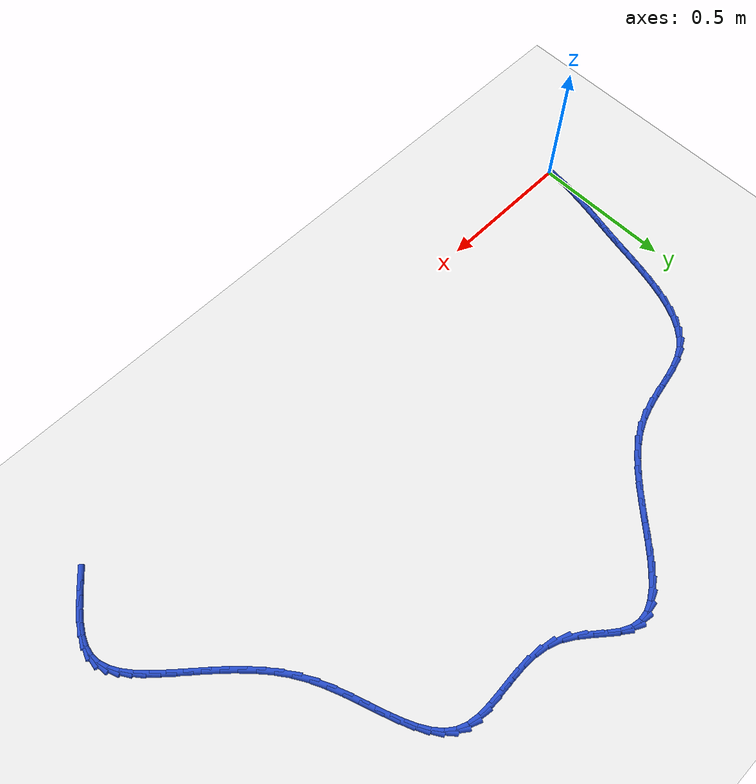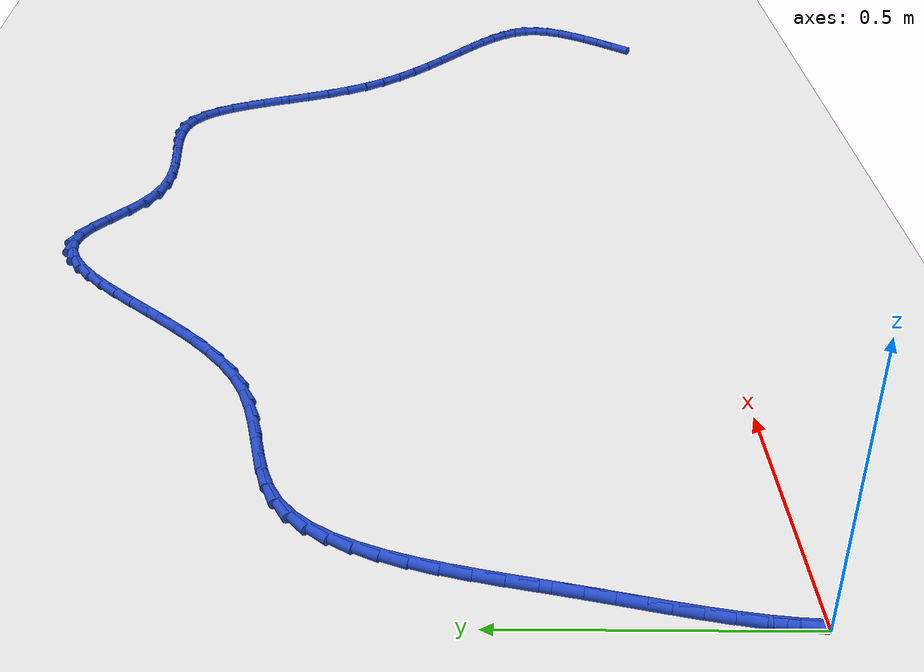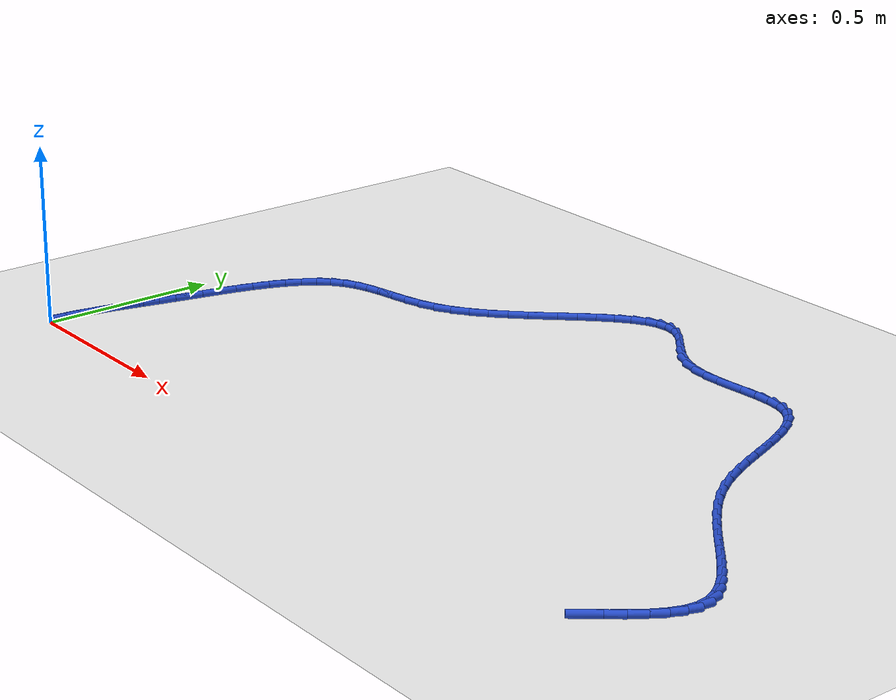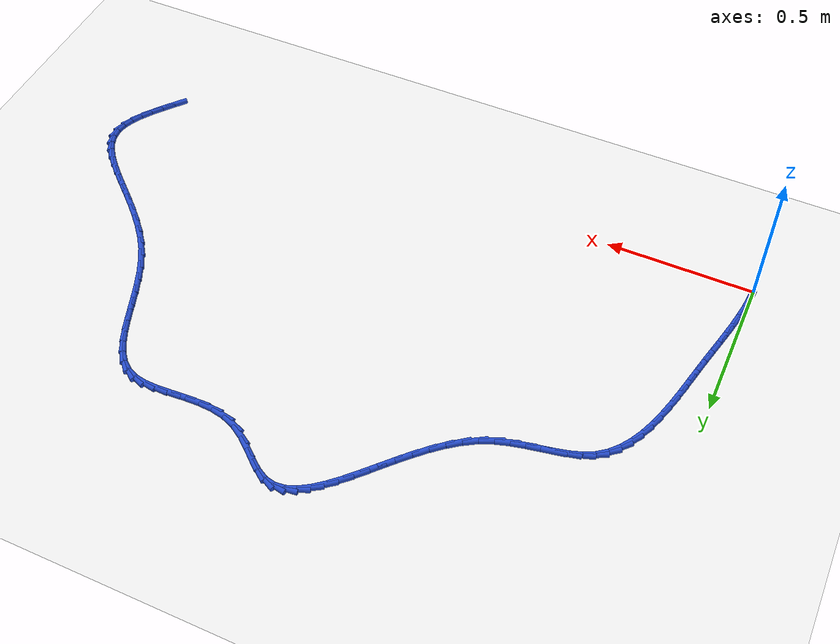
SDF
<sdf version="1.6">
 <world name="default">
  <model name="ground_plane">
   <static>1</static>
   <link name="link">
    <collision name="collision">
     <geometry><plane><normal>0 0 1</normal><size>100 100</size></plane></geometry>
     <surface><friction><ode><mu>100</mu><mu2>50</mu2></ode></friction></surface>
    </collision>
    <visual name="visual">
     <cast_shadows>0</cast_shadows>
     <geometry><plane><normal>0 0 1</normal><size>100 100</size></plane></geometry>
     <material>
      <script><uri>file://media/materials/scripts/gazebo.material</uri><name>Gazebo/WhiteGlow</name></script>
     </material>
    </visual>
   </link>
  </model>
  <model name="line">
   <link name="link_1">
    <pose>0.0030210771628977427 0.043549844444289006 0.01 0 1.57 1.4515427963999257</pose>
    <collision name="collision">
     <geometry><cylinder><radius>0.01</radius><length>0.08</length></cylinder></geometry>
    </collision>
    <visual name="visual">
     <material>
      <script><name>Gazebo/Blue</name><uri>file://media/materials/scripts/gazebo.material</uri></script>
     </material>
     <geometry><cylinder><radius>0.01</radius><length>0.08</length></cylinder></geometry>
    </visual>
   </link>
   <link name="link_2">
    <pose>0.008180374880186836 0.0866078318617924 0.01 0 1.57 1.409806183316817</pose>
    <collision name="collision">
     <geometry><cylinder><radius>0.01</radius><length>0.08</length></cylinder></geometry>
    </collision>
    <visual name="visual">
     <material>
      <script><name>Gazebo/Blue</name><uri>file://media/materials/scripts/gazebo.material</uri></script>
     </material>
     <geometry><cylinder><radius>0.01</radius><length>0.08</length></cylinder></geometry>
    </visual>
   </link>
   <link name="link_3">
    <pose>0.015138876239396531 0.1294569198297427 0.01 0 1.57 1.3771208287644718</pose>
    <collision name="collision">
     <geometry><cylinder><radius>0.01</radius><length>0.08</length></cylinder></geometry>
    </collision>
    <visual name="visual">
     <material>
      <script><name>Gazebo/Blue</name><uri>file://media/materials/scripts/gazebo.material</uri></script>
     </material>
     <geometry><cylinder><radius>0.01</radius><length>0.08</length></cylinder></geometry>
    </visual>
   </link>
   <link name="link_4">
    <pose>0.02355756432805612 0.17238006592537258 0.01 0 1.57 1.3538444630265805</pose>
    <collision name="collision">
     <geometry><cylinder><radius>0.01</radius><length>0.08</length></cylinder></geometry>
    </collision>
    <visual name="visual">
     <material>
      <script><name>Gazebo/Blue</name><uri>file://media/materials/scripts/gazebo.material</uri></script>
     </material>
     <geometry><cylinder><radius>0.01</radius><length>0.08</length></cylinder></geometry>
    </visual>
   </link>
   <link name="link_5">
    <pose>0.03309742223369489 0.2156602277259145 0.01 0 1.57 1.3399675565499631</pose>
    <collision name="collision">
     <geometry><cylinder><radius>0.01</radius><length>0.08</length></cylinder></geometry>
    </collision>
    <visual name="visual">
     <material>
      <script><name>Gazebo/Blue</name><uri>file://media/materials/scripts/gazebo.material</uri></script>
     </material>
     <geometry><cylinder><radius>0.01</radius><length>0.08</length></cylinder></geometry>
    </visual>
   </link>
   <link name="link_6">
    <pose>0.04341943304384212 0.259580362808601 0.01 0 1.57 1.3351920761687521</pose>
    <collision name="collision">
     <geometry><cylinder><radius>0.01</radius><length>0.08</length></cylinder></geometry>
    </collision>
    <visual name="visual">
     <material>
      <script><name>Gazebo/Blue</name><uri>file://media/materials/scripts/gazebo.material</uri></script>
     </material>
     <geometry><cylinder><radius>0.01</radius><length>0.08</length></cylinder></geometry>
    </visual>
   </link>
   <link name="link_7">
    <pose>0.05418457984602708 0.3044234287506645 0.01 0 1.57 1.3390016830281561</pose>
    <collision name="collision">
     <geometry><cylinder><radius>0.01</radius><length>0.08</length></cylinder></geometry>
    </collision>
    <visual name="visual">
     <material>
      <script><name>Gazebo/Blue</name><uri>file://media/materials/scripts/gazebo.material</uri></script>
     </material>
     <geometry><cylinder><radius>0.01</radius><length>0.08</length></cylinder></geometry>
    </visual>
   </link>
   <link name="link_8">
    <pose>0.06505384572777907 0.3504723831293377 0.01 0 1.57 1.349166826581718</pose>
    <collision name="collision">
     <geometry><cylinder><radius>0.01</radius><length>0.08</length></cylinder></geometry>
    </collision>
    <visual name="visual">
     <material>
      <script><name>Gazebo/Blue</name><uri>file://media/materials/scripts/gazebo.material</uri></script>
     </material>
     <geometry><cylinder><radius>0.01</radius><length>0.08</length></cylinder></geometry>
    </visual>
   </link>
   <link name="link_9">
    <pose>0.07574800750845703 0.3979321658598631 0.01 0 1.57 1.3528844765660348</pose>
    <collision name="collision">
     <geometry><cylinder><radius>0.01</radius><length>0.08</length></cylinder></geometry>
    </collision>
    <visual name="visual">
     <material>
      <script><name>Gazebo/Blue</name><uri>file://media/materials/scripts/gazebo.material</uri></script>
     </material>
     <geometry><cylinder><radius>0.01</radius><length>0.08</length></cylinder></geometry>
    </visual>
   </link>
   <link name="link_10">
    <pose>0.08647418946112839 0.4463731404547042 0.01 0 1.57 1.3446354608060995</pose>
    <collision name="collision">
     <geometry><cylinder><radius>0.01</radius><length>0.08</length></cylinder></geometry>
    </collision>
    <visual name="visual">
     <material>
      <script><name>Gazebo/Blue</name><uri>file://media/materials/scripts/gazebo.material</uri></script>
     </material>
     <geometry><cylinder><radius>0.01</radius><length>0.08</length></cylinder></geometry>
    </visual>
   </link>
   <link name="link_11">
    <pose>0.09767618694575322 0.49505686673913185 0.01 0 1.57 1.3243201984069741</pose>
    <collision name="collision">
     <geometry><cylinder><radius>0.01</radius><length>0.08</length></cylinder></geometry>
    </collision>
    <visual name="visual">
     <material>
      <script><name>Gazebo/Blue</name><uri>file://media/materials/scripts/gazebo.material</uri></script>
     </material>
     <geometry><cylinder><radius>0.01</radius><length>0.08</length></cylinder></geometry>
    </visual>
   </link>
   <link name="link_12">
    <pose>0.1097993761367332 0.5432428419234409 0.01 0 1.57 1.2909982533041657</pose>
    <collision name="collision">
     <geometry><cylinder><radius>0.01</radius><length>0.08</length></cylinder></geometry>
    </collision>
    <visual name="visual">
     <material>
      <script><name>Gazebo/Blue</name><uri>file://media/materials/scripts/gazebo.material</uri></script>
     </material>
     <geometry><cylinder><radius>0.01</radius><length>0.08</length></cylinder></geometry>
    </visual>
   </link>
   <link name="link_13">
    <pose>0.12328913320846982 0.5901905632179254 0.01 0 1.57 1.242813594765634</pose>
    <collision name="collision">
     <geometry><cylinder><radius>0.01</radius><length>0.08</length></cylinder></geometry>
    </collision>
    <visual name="visual">
     <material>
      <script><name>Gazebo/Blue</name><uri>file://media/materials/scripts/gazebo.material</uri></script>
     </material>
     <geometry><cylinder><radius>0.01</radius><length>0.08</length></cylinder></geometry>
    </visual>
   </link>
   <link name="link_14">
    <pose>0.13859083433536465 0.6351595278328798 0.01 0 1.57 1.1769135409235503</pose>
    <collision name="collision">
     <geometry><cylinder><radius>0.01</radius><length>0.08</length></cylinder></geometry>
    </collision>
    <visual name="visual">
     <material>
      <script><name>Gazebo/Blue</name><uri>file://media/materials/scripts/gazebo.material</uri></script>
     </material>
     <geometry><cylinder><radius>0.01</radius><length>0.08</length></cylinder></geometry>
    </visual>
   </link>
   <link name="link_15">
    <pose>0.1561498556918192 0.6774092329785986 0.01 0 1.57 1.08943323458279</pose>
    <collision name="collision">
     <geometry><cylinder><radius>0.01</radius><length>0.08</length></cylinder></geometry>
    </collision>
    <visual name="visual">
     <material>
      <script><name>Gazebo/Blue</name><uri>file://media/materials/scripts/gazebo.material</uri></script>
     </material>
     <geometry><cylinder><radius>0.01</radius><length>0.08</length></cylinder></geometry>
    </visual>
   </link>
   <link name="link_16">
    <pose>0.17641157345223518 0.7161991758653767 0.01 0 1.57 0.9758210956734124</pose>
    <collision name="collision">
     <geometry><cylinder><radius>0.01</radius><length>0.08</length></cylinder></geometry>
    </collision>
    <visual name="visual">
     <material>
      <script><name>Gazebo/Blue</name><uri>file://media/materials/scripts/gazebo.material</uri></script>
     </material>
     <geometry><cylinder><radius>0.01</radius><length>0.08</length></cylinder></geometry>
    </visual>
   </link>
   <link name="link_17">
    <pose>0.19982136379101412 0.7507888537035082 0.01 0 1.57 0.8320645323728909</pose>
    <collision name="collision">
     <geometry><cylinder><radius>0.01</radius><length>0.08</length></cylinder></geometry>
    </collision>
    <visual name="visual">
     <material>
      <script><name>Gazebo/Blue</name><uri>file://media/materials/scripts/gazebo.material</uri></script>
     </material>
     <geometry><cylinder><radius>0.01</radius><length>0.08</length></cylinder></geometry>
    </visual>
   </link>
   <link name="link_18">
    <pose>0.2268246028825574 0.7804377637032877 0.01 0 1.57 0.657496976605272</pose>
    <collision name="collision">
     <geometry><cylinder><radius>0.01</radius><length>0.08</length></cylinder></geometry>
    </collision>
    <visual name="visual">
     <material>
      <script><name>Gazebo/Blue</name><uri>file://media/materials/scripts/gazebo.material</uri></script>
     </material>
     <geometry><cylinder><radius>0.01</radius><length>0.08</length></cylinder></geometry>
    </visual>
   </link>
   <link name="link_19">
    <pose>0.25786666690126686 0.8044054030750096 0.01 0 1.57 0.4671778127568607</pose>
    <collision name="collision">
     <geometry><cylinder><radius>0.01</radius><length>0.08</length></cylinder></geometry>
    </collision>
    <visual name="visual">
     <material>
      <script><name>Gazebo/Blue</name><uri>file://media/materials/scripts/gazebo.material</uri></script>
     </material>
     <geometry><cylinder><radius>0.01</radius><length>0.08</length></cylinder></geometry>
    </visual>
   </link>
   <link name="link_20">
    <pose>0.29324124276224894 0.8222490670003836 0.01 0 1.57 0.31873609881320875</pose>
    <collision name="collision">
     <geometry><cylinder><radius>0.01</radius><length>0.08</length></cylinder></geometry>
    </collision>
    <visual name="visual">
     <material>
      <script><name>Gazebo/Blue</name><uri>file://media/materials/scripts/gazebo.material</uri></script>
     </material>
     <geometry><cylinder><radius>0.01</radius><length>0.08</length></cylinder></geometry>
    </visual>
   </link>
   <link name="link_21">
    <pose>0.3324035535397463 0.8351721318146237 0.01 0 1.57 0.22797307189889215</pose>
    <collision name="collision">
     <geometry><cylinder><radius>0.01</radius><length>0.08</length></cylinder></geometry>
    </collision>
    <visual name="visual">
     <material>
      <script><name>Gazebo/Blue</name><uri>file://media/materials/scripts/gazebo.material</uri></script>
     </material>
     <geometry><cylinder><radius>0.01</radius><length>0.08</length></cylinder></geometry>
    </visual>
   </link>
   <link name="link_22">
    <pose>0.3745207193779901 0.8449435805973826 0.01 0 1.57 0.18741160357542075</pose>
    <collision name="collision">
     <geometry><cylinder><radius>0.01</radius><length>0.08</length></cylinder></geometry>
    </collision>
    <visual name="visual">
     <material>
      <script><name>Gazebo/Blue</name><uri>file://media/materials/scripts/gazebo.material</uri></script>
     </material>
     <geometry><cylinder><radius>0.01</radius><length>0.08</length></cylinder></geometry>
    </visual>
   </link>
   <link name="link_23">
    <pose>0.41875959860259976 0.8533329104334043 0.01 0 1.57 0.19044214409757504</pose>
    <collision name="collision">
     <geometry><cylinder><radius>0.01</radius><length>0.08</length></cylinder></geometry>
    </collision>
    <visual name="visual">
     <material>
      <script><name>Gazebo/Blue</name><uri>file://media/materials/scripts/gazebo.material</uri></script>
     </material>
     <geometry><cylinder><radius>0.01</radius><length>0.08</length></cylinder></geometry>
    </visual>
   </link>
   <link name="link_24">
    <pose>0.46428704953919464 0.862109618407433 0.01 0 1.57 0.2334401766750805</pose>
    <collision name="collision">
     <geometry><cylinder><radius>0.01</radius><length>0.08</length></cylinder></geometry>
    </collision>
    <visual name="visual">
     <material>
      <script><name>Gazebo/Blue</name><uri>file://media/materials/scripts/gazebo.material</uri></script>
     </material>
     <geometry><cylinder><radius>0.01</radius><length>0.08</length></cylinder></geometry>
    </visual>
   </link>
   <link name="link_25">
    <pose>0.5102699305133935 0.8730432016042121 0.01 0 1.57 0.31499081103400906</pose>
    <collision name="collision">
     <geometry><cylinder><radius>0.01</radius><length>0.08</length></cylinder></geometry>
    </collision>
    <visual name="visual">
     <material>
      <script><name>Gazebo/Blue</name><uri>file://media/materials/scripts/gazebo.material</uri></script>
     </material>
     <geometry><cylinder><radius>0.01</radius><length>0.08</length></cylinder></geometry>
    </visual>
   </link>
   <link name="link_26">
    <pose>0.5558750998508163 0.8879031571084859 0.01 0 1.57 0.4331832673419882</pose>
    <collision name="collision">
     <geometry><cylinder><radius>0.01</radius><length>0.08</length></cylinder></geometry>
    </collision>
    <visual name="visual">
     <material>
      <script><name>Gazebo/Blue</name><uri>file://media/materials/scripts/gazebo.material</uri></script>
     </material>
     <geometry><cylinder><radius>0.01</radius><length>0.08</length></cylinder></geometry>
    </visual>
   </link>
   <link name="link_27">
    <pose>0.6002761705646802 0.9084377413733784 0.01 0 1.57 0.5600879154808069</pose>
    <collision name="collision">
     <geometry><cylinder><radius>0.01</radius><length>0.08</length></cylinder></geometry>
    </collision>
    <visual name="visual">
     <material>
      <script><name>Gazebo/Blue</name><uri>file://media/materials/scripts/gazebo.material</uri></script>
     </material>
     <geometry><cylinder><radius>0.01</radius><length>0.08</length></cylinder></geometry>
    </visual>
   </link>
   <link name="link_28">
    <pose>0.643014780779613 0.9352379277498525 0.01 0 1.57 0.6596476481467995</pose>
    <collision name="collision">
     <geometry><cylinder><radius>0.01</radius><length>0.08</length></cylinder></geometry>
    </collision>
    <visual name="visual">
     <material>
      <script><name>Gazebo/Blue</name><uri>file://media/materials/scripts/gazebo.material</uri></script>
     </material>
     <geometry><cylinder><radius>0.01</radius><length>0.08</length></cylinder></geometry>
    </visual>
   </link>
   <link name="link_29">
    <pose>0.6841825581202264 0.9671652055537762 0.01 0 1.57 0.7330117037128852</pose>
    <collision name="collision">
     <geometry><cylinder><radius>0.01</radius><length>0.08</length></cylinder></geometry>
    </collision>
    <visual name="visual">
     <material>
      <script><name>Gazebo/Blue</name><uri>file://media/materials/scripts/gazebo.material</uri></script>
     </material>
     <geometry><cylinder><radius>0.01</radius><length>0.08</length></cylinder></geometry>
    </visual>
   </link>
   <link name="link_30">
    <pose>0.7239161292348578 1.0029395612302665 0.01 0 1.57 0.7841664014365014</pose>
    <collision name="collision">
     <geometry><cylinder><radius>0.01</radius><length>0.08</length></cylinder></geometry>
    </collision>
    <visual name="visual">
     <material>
      <script><name>Gazebo/Blue</name><uri>file://media/materials/scripts/gazebo.material</uri></script>
     </material>
     <geometry><cylinder><radius>0.01</radius><length>0.08</length></cylinder></geometry>
    </visual>
   </link>
   <link name="link_31">
    <pose>0.7623521207718458 1.0412809812244412 0.01 0 1.57 0.8159910181667126</pose>
    <collision name="collision">
     <geometry><cylinder><radius>0.01</radius><length>0.08</length></cylinder></geometry>
    </collision>
    <visual name="visual">
     <material>
      <script><name>Gazebo/Blue</name><uri>file://media/materials/scripts/gazebo.material</uri></script>
     </material>
     <geometry><cylinder><radius>0.01</radius><length>0.08</length></cylinder></geometry>
    </visual>
   </link>
   <link name="link_32">
    <pose>0.7996271593795277 1.0809094519814177 0.01 0 1.57 0.8299721801608987</pose>
    <collision name="collision">
     <geometry><cylinder><radius>0.01</radius><length>0.08</length></cylinder></geometry>
    </collision>
    <visual name="visual">
     <material>
      <script><name>Gazebo/Blue</name><uri>file://media/materials/scripts/gazebo.material</uri></script>
     </material>
     <geometry><cylinder><radius>0.01</radius><length>0.08</length></cylinder></geometry>
    </visual>
   </link>
   <link name="link_33">
    <pose>0.8358778717062421 1.1205449599463133 0.01 0 1.57 0.8260606718281216</pose>
    <collision name="collision">
     <geometry><cylinder><radius>0.01</radius><length>0.08</length></cylinder></geometry>
    </collision>
    <visual name="visual">
     <material>
      <script><name>Gazebo/Blue</name><uri>file://media/materials/scripts/gazebo.material</uri></script>
     </material>
     <geometry><cylinder><radius>0.01</radius><length>0.08</length></cylinder></geometry>
    </visual>
   </link>
   <link name="link_34">
    <pose>0.8712408844003261 1.158907491564246 0.01 0 1.57 0.802402727187894</pose>
    <collision name="collision">
     <geometry><cylinder><radius>0.01</radius><length>0.08</length></cylinder></geometry>
    </collision>
    <visual name="visual">
     <material>
      <script><name>Gazebo/Blue</name><uri>file://media/materials/scripts/gazebo.material</uri></script>
     </material>
     <geometry><cylinder><radius>0.01</radius><length>0.08</length></cylinder></geometry>
    </visual>
   </link>
   <link name="link_35">
    <pose>0.9058528241101184 1.1947170332803327 0.01 0 1.57 0.7547751546846299</pose>
    <collision name="collision">
     <geometry><cylinder><radius>0.01</radius><length>0.08</length></cylinder></geometry>
    </collision>
    <visual name="visual">
     <material>
      <script><name>Gazebo/Blue</name><uri>file://media/materials/scripts/gazebo.material</uri></script>
     </material>
     <geometry><cylinder><radius>0.01</radius><length>0.08</length></cylinder></geometry>
    </visual>
   </link>
   <link name="link_36">
    <pose>0.9398503174839569 1.2266935715396918 0.01 0 1.57 0.6756095453964882</pose>
    <collision name="collision">
     <geometry><cylinder><radius>0.01</radius><length>0.08</length></cylinder></geometry>
    </collision>
    <visual name="visual">
     <material>
      <script><name>Gazebo/Blue</name><uri>file://media/materials/scripts/gazebo.material</uri></script>
     </material>
     <geometry><cylinder><radius>0.01</radius><length>0.08</length></cylinder></geometry>
    </visual>
   </link>
   <link name="link_37">
    <pose>0.973369991170179 1.2535570927874395 0.01 0 1.57 0.5528120177913814</pose>
    <collision name="collision">
     <geometry><cylinder><radius>0.01</radius><length>0.08</length></cylinder></geometry>
    </collision>
    <visual name="visual">
     <material>
      <script><name>Gazebo/Blue</name><uri>file://media/materials/scripts/gazebo.material</uri></script>
     </material>
     <geometry><cylinder><radius>0.01</radius><length>0.08</length></cylinder></geometry>
    </visual>
   </link>
   <link name="link_38">
    <pose>1.0065484718171234 1.274027583468695 0.01 0 1.57 0.3702129794753879</pose>
    <collision name="collision">
     <geometry><cylinder><radius>0.01</radius><length>0.08</length></cylinder></geometry>
    </collision>
    <visual name="visual">
     <material>
      <script><name>Gazebo/Blue</name><uri>file://media/materials/scripts/gazebo.material</uri></script>
     </material>
     <geometry><cylinder><radius>0.01</radius><length>0.08</length></cylinder></geometry>
    </visual>
   </link>
   <link name="link_39">
    <pose>1.0395223860731275 1.2868250300285742 0.01 0 1.57 0.11630228064001204</pose>
    <collision name="collision">
     <geometry><cylinder><radius>0.01</radius><length>0.08</length></cylinder></geometry>
    </collision>
    <visual name="visual">
     <material>
      <script><name>Gazebo/Blue</name><uri>file://media/materials/scripts/gazebo.material</uri></script>
     </material>
     <geometry><cylinder><radius>0.01</radius><length>0.08</length></cylinder></geometry>
    </visual>
   </link>
   <link name="link_40">
    <pose>1.0724283605865295 1.290669418912195 0.01 0 1.57 -0.19137415824508225</pose>
    <collision name="collision">
     <geometry><cylinder><radius>0.01</radius><length>0.08</length></cylinder></geometry>
    </collision>
    <visual name="visual">
     <material>
      <script><name>Gazebo/Blue</name><uri>file://media/materials/scripts/gazebo.material</uri></script>
     </material>
     <geometry><cylinder><radius>0.01</radius><length>0.08</length></cylinder></geometry>
    </visual>
   </link>
   <link name="link_41">
    <pose>1.1054030220056674 1.2842807365646753 0.01 0 1.57 -0.48402177353507675</pose>
    <collision name="collision">
     <geometry><cylinder><radius>0.01</radius><length>0.08</length></cylinder></geometry>
    </collision>
    <visual name="visual">
     <material>
      <script><name>Gazebo/Blue</name><uri>file://media/materials/scripts/gazebo.material</uri></script>
     </material>
     <geometry><cylinder><radius>0.01</radius><length>0.08</length></cylinder></geometry>
    </visual>
   </link>
   <link name="link_42">
    <pose>1.1386236652736212 1.2668155343347673 0.01 0 1.57 -0.6506811001834258</pose>
    <collision name="collision">
     <geometry><cylinder><radius>0.01</radius><length>0.08</length></cylinder></geometry>
    </collision>
    <visual name="visual">
     <material>
      <script><name>Gazebo/Blue</name><uri>file://media/materials/scripts/gazebo.material</uri></script>
     </material>
     <geometry><cylinder><radius>0.01</radius><length>0.08</length></cylinder></geometry>
    </visual>
   </link>
   <link name="link_43">
    <pose>1.1725957621900112 1.240953267559664 0.01 0 1.57 -0.701161776089723</pose>
    <collision name="collision">
     <geometry><cylinder><radius>0.01</radius><length>0.08</length></cylinder></geometry>
    </collision>
    <visual name="visual">
     <material>
      <script><name>Gazebo/Blue</name><uri>file://media/materials/scripts/gazebo.material</uri></script>
     </material>
     <geometry><cylinder><radius>0.01</radius><length>0.08</length></cylinder></geometry>
    </visual>
   </link>
   <link name="link_44">
    <pose>1.2079834199008672 1.2110763059760268 0.01 0 1.57 -0.6669385789431086</pose>
    <collision name="collision">
     <geometry><cylinder><radius>0.01</radius><length>0.08</length></cylinder></geometry>
    </collision>
    <visual name="visual">
     <material>
      <script><name>Gazebo/Blue</name><uri>file://media/materials/scripts/gazebo.material</uri></script>
     </material>
     <geometry><cylinder><radius>0.01</radius><length>0.08</length></cylinder></geometry>
    </visual>
   </link>
   <link name="link_45">
    <pose>1.2454517774009268 1.1815780959819424 0.01 0 1.57 -0.5512727774426774</pose>
    <collision name="collision">
     <geometry><cylinder><radius>0.01</radius><length>0.08</length></cylinder></geometry>
    </collision>
    <visual name="visual">
     <material>
      <script><name>Gazebo/Blue</name><uri>file://media/materials/scripts/gazebo.material</uri></script>
     </material>
     <geometry><cylinder><radius>0.01</radius><length>0.08</length></cylinder></geometry>
    </visual>
   </link>
   <link name="link_46">
    <pose>1.2856659736849265 1.1568520839754979 0.01 0 1.57 -0.35522282201329924</pose>
    <collision name="collision">
     <geometry><cylinder><radius>0.01</radius><length>0.08</length></cylinder></geometry>
    </collision>
    <visual name="visual">
     <material>
      <script><name>Gazebo/Blue</name><uri>file://media/materials/scripts/gazebo.material</uri></script>
     </material>
     <geometry><cylinder><radius>0.01</radius><length>0.08</length></cylinder></geometry>
    </visual>
   </link>
   <link name="link_47">
    <pose>1.3291391229474097 1.140725345583839 0.01 0 1.57 -0.16975197883430354</pose>
    <collision name="collision">
     <geometry><cylinder><radius>0.01</radius><length>0.08</length></cylinder></geometry>
    </collision>
    <visual name="visual">
     <material>
      <script><name>Gazebo/Blue</name><uri>file://media/materials/scripts/gazebo.material</uri></script>
     </material>
     <geometry><cylinder><radius>0.01</radius><length>0.08</length></cylinder></geometry>
    </visual>
   </link>
   <link name="link_48">
    <pose>1.3752558801868564 1.1328208640490016 0.01 0 1.57 -0.04092604989559028</pose>
    <collision name="collision">
     <geometry><cylinder><radius>0.01</radius><length>0.08</length></cylinder></geometry>
    </collision>
    <visual name="visual">
     <material>
      <script><name>Gazebo/Blue</name><uri>file://media/materials/scripts/gazebo.material</uri></script>
     </material>
     <geometry><cylinder><radius>0.01</radius><length>0.08</length></cylinder></geometry>
    </visual>
   </link>
   <link name="link_49">
    <pose>1.4228931975238088 1.130870167600295 0.01 0 1.57 0.03590906795269693</pose>
    <collision name="collision">
     <geometry><cylinder><radius>0.01</radius><length>0.08</length></cylinder></geometry>
    </collision>
    <visual name="visual">
     <material>
      <script><name>Gazebo/Blue</name><uri>file://media/materials/scripts/gazebo.material</uri></script>
     </material>
     <geometry><cylinder><radius>0.01</radius><length>0.08</length></cylinder></geometry>
    </visual>
   </link>
   <link name="link_50">
    <pose>1.4709255907290666 1.1325957078079583 0.01 0 1.57 0.06595277640100475</pose>
    <collision name="collision">
     <geometry><cylinder><radius>0.01</radius><length>0.08</length></cylinder></geometry>
    </collision>
    <visual name="visual">
     <material>
      <script><name>Gazebo/Blue</name><uri>file://media/materials/scripts/gazebo.material</uri></script>
     </material>
     <geometry><cylinder><radius>0.01</radius><length>0.08</length></cylinder></geometry>
    </visual>
   </link>
   <link name="link_51">
    <pose>1.5182275755734296 1.1357199362422323 0.01 0 1.57 0.049367145772272476</pose>
    <collision name="collision">
     <geometry><cylinder><radius>0.01</radius><length>0.08</length></cylinder></geometry>
    </collision>
    <visual name="visual">
     <material>
      <script><name>Gazebo/Blue</name><uri>file://media/materials/scripts/gazebo.material</uri></script>
     </material>
     <geometry><cylinder><radius>0.01</radius><length>0.08</length></cylinder></geometry>
    </visual>
   </link>
   <link name="link_52">
    <pose>1.563673667827697 1.1379653044733562 0.01 0 1.57 -0.021450765752319714</pose>
    <collision name="collision">
     <geometry><cylinder><radius>0.01</radius><length>0.08</length></cylinder></geometry>
    </collision>
    <visual name="visual">
     <material>
      <script><name>Gazebo/Blue</name><uri>file://media/materials/scripts/gazebo.material</uri></script>
     </material>
     <geometry><cylinder><radius>0.01</radius><length>0.08</length></cylinder></geometry>
    </visual>
   </link>
   <link name="link_53">
    <pose>1.6061383832626688 1.13705426407157 0.01 0 1.57 -0.16393142986766965</pose>
    <collision name="collision">
     <geometry><cylinder><radius>0.01</radius><length>0.08</length></cylinder></geometry>
    </collision>
    <visual name="visual">
     <material>
      <script><name>Gazebo/Blue</name><uri>file://media/materials/scripts/gazebo.material</uri></script>
     </material>
     <geometry><cylinder><radius>0.01</radius><length>0.08</length></cylinder></geometry>
    </visual>
   </link>
   <link name="link_54">
    <pose>1.6444962376491437 1.1307092666071121 0.01 0 1.57 -0.39561650465453124</pose>
    <collision name="collision">
     <geometry><cylinder><radius>0.01</radius><length>0.08</length></cylinder></geometry>
    </collision>
    <visual name="visual">
     <material>
      <script><name>Gazebo/Blue</name><uri>file://media/materials/scripts/gazebo.material</uri></script>
     </material>
     <geometry><cylinder><radius>0.01</radius><length>0.08</length></cylinder></geometry>
    </visual>
   </link>
   <link name="link_55">
    <pose>1.677730837523715 1.1168293118525852 0.01 0 1.57 -0.6526398691585391</pose>
    <collision name="collision">
     <geometry><cylinder><radius>0.01</radius><length>0.08</length></cylinder></geometry>
    </collision>
    <visual name="visual">
     <material>
      <script><name>Gazebo/Blue</name><uri>file://media/materials/scripts/gazebo.material</uri></script>
     </material>
     <geometry><cylinder><radius>0.01</radius><length>0.08</length></cylinder></geometry>
    </visual>
   </link>
   <link name="link_56">
    <pose>1.706003056471231 1.0952186422430634 0.01 0 1.57 -0.8648523216458641</pose>
    <collision name="collision">
     <geometry><cylinder><radius>0.01</radius><length>0.08</length></cylinder></geometry>
    </collision>
    <visual name="visual">
     <material>
      <script><name>Gazebo/Blue</name><uri>file://media/materials/scripts/gazebo.material</uri></script>
     </material>
     <geometry><cylinder><radius>0.01</radius><length>0.08</length></cylinder></geometry>
    </visual>
   </link>
   <link name="link_57">
    <pose>1.7301922424033247 1.06684425079031 0.01 0 1.57 -1.0196173130961677</pose>
    <collision name="collision">
     <geometry><cylinder><radius>0.01</radius><length>0.08</length></cylinder></geometry>
    </collision>
    <visual name="visual">
     <material>
      <script><name>Gazebo/Blue</name><uri>file://media/materials/scripts/gazebo.material</uri></script>
     </material>
     <geometry><cylinder><radius>0.01</radius><length>0.08</length></cylinder></geometry>
    </visual>
   </link>
   <link name="link_58">
    <pose>1.751188001516777 1.032689732111085 0.01 0 1.57 -1.1233716317697025</pose>
    <collision name="collision">
     <geometry><cylinder><radius>0.01</radius><length>0.08</length></cylinder></geometry>
    </collision>
    <visual name="visual">
     <material>
      <script><name>Gazebo/Blue</name><uri>file://media/materials/scripts/gazebo.material</uri></script>
     </material>
     <geometry><cylinder><radius>0.01</radius><length>0.08</length></cylinder></geometry>
    </visual>
   </link>
   <link name="link_59">
    <pose>1.7698799400083691 0.993738680822149 0.01 0 1.57 -1.186824878893677</pose>
    <collision name="collision">
     <geometry><cylinder><radius>0.01</radius><length>0.08</length></cylinder></geometry>
    </collision>
    <visual name="visual">
     <material>
      <script><name>Gazebo/Blue</name><uri>file://media/materials/scripts/gazebo.material</uri></script>
     </material>
     <geometry><cylinder><radius>0.01</radius><length>0.08</length></cylinder></geometry>
    </visual>
   </link>
   <link name="link_60">
    <pose>1.7871576640748832 0.9509746915402617 0.01 0 1.57 -1.218664188829873</pose>
    <collision name="collision">
     <geometry><cylinder><radius>0.01</radius><length>0.08</length></cylinder></geometry>
    </collision>
    <visual name="visual">
     <material>
      <script><name>Gazebo/Blue</name><uri>file://media/materials/scripts/gazebo.material</uri></script>
     </material>
     <geometry><cylinder><radius>0.01</radius><length>0.08</length></cylinder></geometry>
    </visual>
   </link>
   <link name="link_61">
    <pose>1.8039107799131007 0.9053813588821831 0.01 0 1.57 -1.2244936698728435</pose>
    <collision name="collision">
     <geometry><cylinder><radius>0.01</radius><length>0.08</length></cylinder></geometry>
    </collision>
    <visual name="visual">
     <material>
      <script><name>Gazebo/Blue</name><uri>file://media/materials/scripts/gazebo.material</uri></script>
     </material>
     <geometry><cylinder><radius>0.01</radius><length>0.08</length></cylinder></geometry>
    </visual>
   </link>
   <link name="link_62">
    <pose>1.8210288937198025 0.8579422774646733 0.01 0 1.57 -1.2073192243812234</pose>
    <collision name="collision">
     <geometry><cylinder><radius>0.01</radius><length>0.08</length></cylinder></geometry>
    </collision>
    <visual name="visual">
     <material>
      <script><name>Gazebo/Blue</name><uri>file://media/materials/scripts/gazebo.material</uri></script>
     </material>
     <geometry><cylinder><radius>0.01</radius><length>0.08</length></cylinder></geometry>
    </visual>
   </link>
   <link name="link_63">
    <pose>1.839401611691771 0.8096410419044923 0.01 0 1.57 -1.168213626999577</pose>
    <collision name="collision">
     <geometry><cylinder><radius>0.01</radius><length>0.08</length></cylinder></geometry>
    </collision>
    <visual name="visual">
     <material>
      <script><name>Gazebo/Blue</name><uri>file://media/materials/scripts/gazebo.material</uri></script>
     </material>
     <geometry><cylinder><radius>0.01</radius><length>0.08</length></cylinder></geometry>
    </visual>
   </link>
   <link name="link_64">
    <pose>1.8599185400257874 0.761461246818401 0.01 0 1.57 -1.1069216172857308</pose>
    <collision name="collision">
     <geometry><cylinder><radius>0.01</radius><length>0.08</length></cylinder></geometry>
    </collision>
    <visual name="visual">
     <material>
      <script><name>Gazebo/Blue</name><uri>file://media/materials/scripts/gazebo.material</uri></script>
     </material>
     <geometry><cylinder><radius>0.01</radius><length>0.08</length></cylinder></geometry>
    </visual>
   </link>
   <link name="link_65">
    <pose>1.8834692849186327 0.7143864868231589 0.01 0 1.57 -1.0227232085715938</pose>
    <collision name="collision">
     <geometry><cylinder><radius>0.01</radius><length>0.08</length></cylinder></geometry>
    </collision>
    <visual name="visual">
     <material>
      <script><name>Gazebo/Blue</name><uri>file://media/materials/scripts/gazebo.material</uri></script>
     </material>
     <geometry><cylinder><radius>0.01</radius><length>0.08</length></cylinder></geometry>
    </visual>
   </link>
   <link name="link_66">
    <pose>1.9109348651779916 0.6693946631426695 0.01 0 1.57 -0.9299960899307664</pose>
    <collision name="collision">
     <geometry><cylinder><radius>0.01</radius><length>0.08</length></cylinder></geometry>
    </collision>
    <visual name="visual">
     <material>
      <script><name>Gazebo/Blue</name><uri>file://media/materials/scripts/gazebo.material</uri></script>
     </material>
     <geometry><cylinder><radius>0.01</radius><length>0.08</length></cylinder></geometry>
    </visual>
   </link>
   <link name="link_67">
    <pose>1.9425339900322058 0.6270245693064381 0.01 0 1.57 -0.8537988232908266</pose>
    <collision name="collision">
     <geometry><cylinder><radius>0.01</radius><length>0.08</length></cylinder></geometry>
    </collision>
    <visual name="visual">
     <material>
      <script><name>Gazebo/Blue</name><uri>file://media/materials/scripts/gazebo.material</uri></script>
     </material>
     <geometry><cylinder><radius>0.01</radius><length>0.08</length></cylinder></geometry>
    </visual>
   </link>
   <link name="link_68">
    <pose>1.9773638933218654 0.587071466684384 0.01 0 1.57 -0.7955944325724809</pose>
    <collision name="collision">
     <geometry><cylinder><radius>0.01</radius><length>0.08</length></cylinder></geometry>
    </collision>
    <visual name="visual">
     <material>
      <script><name>Gazebo/Blue</name><uri>file://media/materials/scripts/gazebo.material</uri></script>
     </material>
     <geometry><cylinder><radius>0.01</radius><length>0.08</length></cylinder></geometry>
    </visual>
   </link>
   <link name="link_69">
    <pose>2.014413325563045 0.5492586927848467 0.01 0 1.57 -0.7542977915984361</pose>
    <collision name="collision">
     <geometry><cylinder><radius>0.01</radius><length>0.08</length></cylinder></geometry>
    </collision>
    <visual name="visual">
     <material>
      <script><name>Gazebo/Blue</name><uri>file://media/materials/scripts/gazebo.material</uri></script>
     </material>
     <geometry><cylinder><radius>0.01</radius><length>0.08</length></cylinder></geometry>
    </visual>
   </link>
   <link name="link_70">
    <pose>2.0526710372718218 0.5133095851161652 0.01 0 1.57 -0.7292526877594063</pose>
    <collision name="collision">
     <geometry><cylinder><radius>0.01</radius><length>0.08</length></cylinder></geometry>
    </collision>
    <visual name="visual">
     <material>
      <script><name>Gazebo/Blue</name><uri>file://media/materials/scripts/gazebo.material</uri></script>
     </material>
     <geometry><cylinder><radius>0.01</radius><length>0.08</length></cylinder></geometry>
    </visual>
   </link>
   <link name="link_71">
    <pose>2.091125778964271 0.47894748118667785 0.01 0 1.57 -0.7205773587279716</pose>
    <collision name="collision">
     <geometry><cylinder><radius>0.01</radius><length>0.08</length></cylinder></geometry>
    </collision>
    <visual name="visual">
     <material>
      <script><name>Gazebo/Blue</name><uri>file://media/materials/scripts/gazebo.material</uri></script>
     </material>
     <geometry><cylinder><radius>0.01</radius><length>0.08</length></cylinder></geometry>
    </visual>
   </link>
   <link name="link_72">
    <pose>2.128766301156468 0.44589571850472454 0.01 0 1.57 -0.7294813754477617</pose>
    <collision name="collision">
     <geometry><cylinder><radius>0.01</radius><length>0.08</length></cylinder></geometry>
    </collision>
    <visual name="visual">
     <material>
      <script><name>Gazebo/Blue</name><uri>file://media/materials/scripts/gazebo.material</uri></script>
     </material>
     <geometry><cylinder><radius>0.01</radius><length>0.08</length></cylinder></geometry>
    </visual>
   </link>
   <link name="link_73">
    <pose>2.1645813543644876 0.41387763457864385 0.01 0 1.57 -0.7586722268691207</pose>
    <collision name="collision">
     <geometry><cylinder><radius>0.01</radius><length>0.08</length></cylinder></geometry>
    </collision>
    <visual name="visual">
     <material>
      <script><name>Gazebo/Blue</name><uri>file://media/materials/scripts/gazebo.material</uri></script>
     </material>
     <geometry><cylinder><radius>0.01</radius><length>0.08</length></cylinder></geometry>
    </visual>
   </link>
   <link name="link_74">
    <pose>2.1975596891044074 0.3826165669167748 0.01 0 1.57 -0.812937807755697</pose>
    <collision name="collision">
     <geometry><cylinder><radius>0.01</radius><length>0.08</length></cylinder></geometry>
    </collision>
    <visual name="visual">
     <material>
      <script><name>Gazebo/Blue</name><uri>file://media/materials/scripts/gazebo.material</uri></script>
     </material>
     <geometry><cylinder><radius>0.01</radius><length>0.08</length></cylinder></geometry>
    </visual>
   </link>
   <link name="link_75">
    <pose>2.226690055892302 0.3518358530274569 0.01 0 1.57 -0.8998652024272887</pose>
    <collision name="collision">
     <geometry><cylinder><radius>0.01</radius><length>0.08</length></cylinder></geometry>
    </collision>
    <visual name="visual">
     <material>
      <script><name>Gazebo/Blue</name><uri>file://media/materials/scripts/gazebo.material</uri></script>
     </material>
     <geometry><cylinder><radius>0.01</radius><length>0.08</length></cylinder></geometry>
    </visual>
   </link>
   <link name="link_76">
    <pose>2.250961205244247 0.32125883041902875 0.01 0 1.57 -1.0301205051774938</pose>
    <collision name="collision">
     <geometry><cylinder><radius>0.01</radius><length>0.08</length></cylinder></geometry>
    </collision>
    <visual name="visual">
     <material>
      <script><name>Gazebo/Blue</name><uri>file://media/materials/scripts/gazebo.material</uri></script>
     </material>
     <geometry><cylinder><radius>0.01</radius><length>0.08</length></cylinder></geometry>
    </visual>
   </link>
   <link name="link_77">
    <pose>2.2693618876763186 0.2906088365998292 0.01 0 1.57 -1.2150238517202032</pose>
    <collision name="collision">
     <geometry><cylinder><radius>0.01</radius><length>0.08</length></cylinder></geometry>
    </collision>
    <visual name="visual">
     <material>
      <script><name>Gazebo/Blue</name><uri>file://media/materials/scripts/gazebo.material</uri></script>
     </material>
     <geometry><cylinder><radius>0.01</radius><length>0.08</length></cylinder></geometry>
    </visual>
   </link>
   <link name="link_78">
    <pose>2.280880853704592 0.2596092090781982 0.01 0 1.57 -1.4566419993967967</pose>
    <collision name="collision">
     <geometry><cylinder><radius>0.01</radius><length>0.08</length></cylinder></geometry>
    </collision>
    <visual name="visual">
     <material>
      <script><name>Gazebo/Blue</name><uri>file://media/materials/scripts/gazebo.material</uri></script>
     </material>
     <geometry><cylinder><radius>0.01</radius><length>0.08</length></cylinder></geometry>
    </visual>
   </link>
   <link name="link_79">
    <pose>2.2845068538451425 0.2279832853624737 0.01 0 1.57 1.4210609078903966</pose>
    <collision name="collision">
     <geometry><cylinder><radius>0.01</radius><length>0.08</length></cylinder></geometry>
    </collision>
    <visual name="visual">
     <material>
      <script><name>Gazebo/Blue</name><uri>file://media/materials/scripts/gazebo.material</uri></script>
     </material>
     <geometry><cylinder><radius>0.01</radius><length>0.08</length></cylinder></geometry>
    </visual>
   </link>
   <link name="link_80">
    <pose>2.2796056824183935 0.19549606643556613 0.01 0 1.57 1.2117868378850905</pose>
    <collision name="collision">
     <geometry><cylinder><radius>0.01</radius><length>0.08</length></cylinder></geometry>
    </collision>
    <visual name="visual">
     <material>
      <script><name>Gazebo/Blue</name><uri>file://media/materials/scripts/gazebo.material</uri></script>
     </material>
     <geometry><cylinder><radius>0.01</radius><length>0.08</length></cylinder></geometry>
    </visual>
   </link>
   <link name="link_81">
    <pose>2.267065859941414 0.16208081506705374 0.01 0 1.57 1.0678761299139456</pose>
    <collision name="collision">
     <geometry><cylinder><radius>0.01</radius><length>0.08</length></cylinder></geometry>
    </collision>
    <visual name="visual">
     <material>
      <script><name>Gazebo/Blue</name><uri>file://media/materials/scripts/gazebo.material</uri></script>
     </material>
     <geometry><cylinder><radius>0.01</radius><length>0.08</length></cylinder></geometry>
    </visual>
   </link>
   <link name="link_82">
    <pose>2.2481602612536737 0.1277132653159317 0.01 0 1.57 0.974306764942886</pose>
    <collision name="collision">
     <geometry><cylinder><radius>0.01</radius><length>0.08</length></cylinder></geometry>
    </collision>
    <visual name="visual">
     <material>
      <script><name>Gazebo/Blue</name><uri>file://media/materials/scripts/gazebo.material</uri></script>
     </material>
     <geometry><cylinder><radius>0.01</radius><length>0.08</length></cylinder></geometry>
    </visual>
   </link>
   <link name="link_83">
    <pose>2.2241617612071183 0.09236915124257525 0.01 0 1.57 0.9175100092535012</pose>
    <collision name="collision">
     <geometry><cylinder><radius>0.01</radius><length>0.08</length></cylinder></geometry>
    </collision>
    <visual name="visual">
     <material>
      <script><name>Gazebo/Blue</name><uri>file://media/materials/scripts/gazebo.material</uri></script>
     </material>
     <geometry><cylinder><radius>0.01</radius><length>0.08</length></cylinder></geometry>
    </visual>
   </link>
   <link name="link_84">
    <pose>2.1963432346536984 0.056024206907358376 0.01 0 1.57 0.8884391499865167</pose>
    <collision name="collision">
     <geometry><cylinder><radius>0.01</radius><length>0.08</length></cylinder></geometry>
    </collision>
    <visual name="visual">
     <material>
      <script><name>Gazebo/Blue</name><uri>file://media/materials/scripts/gazebo.material</uri></script>
     </material>
     <geometry><cylinder><radius>0.01</radius><length>0.08</length></cylinder></geometry>
    </visual>
   </link>
   <link name="link_85">
    <pose>2.165977556445361 0.018654166370656342 0.01 0 1.57 0.8818650069336795</pose>
    <collision name="collision">
     <geometry><cylinder><radius>0.01</radius><length>0.08</length></cylinder></geometry>
    </collision>
    <visual name="visual">
     <material>
      <script><name>Gazebo/Blue</name><uri>file://media/materials/scripts/gazebo.material</uri></script>
     </material>
     <geometry><cylinder><radius>0.01</radius><length>0.08</length></cylinder></geometry>
    </visual>
   </link>
   <link name="link_171">
    <pose>0.0030797761671572024 0.043455693874881754 0.01 0 1.57 1.5000429911143327</pose>
    <collision name="collision">
     <geometry><cylinder><radius>0.01</radius><length>0.08</length></cylinder></geometry>
    </collision>
    <visual name="visual">
     <material>
      <script><name>Gazebo/Blue</name><uri>file://media/materials/scripts/gazebo.material</uri></script>
     </material>
     <geometry><cylinder><radius>0.01</radius><length>0.08</length></cylinder></geometry>
    </visual>
   </link>
  </model>
 </world>
</sdf>
